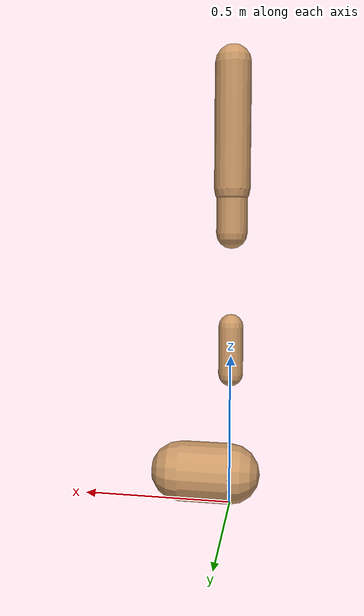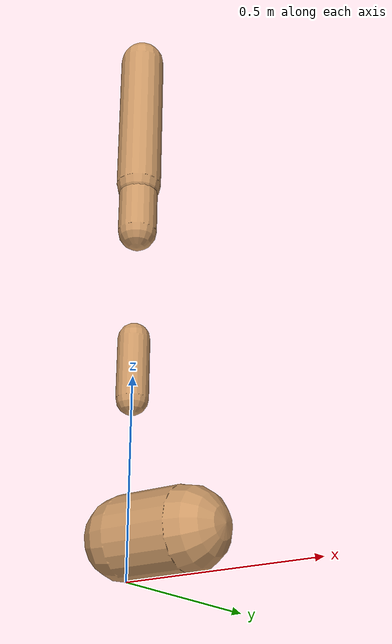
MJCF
<mujoco model="walker2d">
  <compiler angle="degree" coordinate="global" inertiafromgeom="true" />
  <default>
    <joint armature="0.01" damping=".1" limited="true" />
    <geom conaffinity="0" condim="3" contype="1" density="1000" friction="0.8 .1 .1" rgba="0.8 0.6 .4 1" />
  </default>
  <option integrator="RK4" timestep="0.002" />
  <worldbody>

    <body name="torso" pos="0 0 -0.6479437798334989">
      <joint armature="0" axis="1 0 0" damping="0" limited="false" name="ignorex" pos="0 0 0" stiffness="0" type="slide" />
      <joint armature="0" axis="0 0 1" damping="0" limited="false" name="ignorez" pos="0 0 0" ref="1.25" stiffness="0" type="slide" />
      <joint armature="0" axis="0 1 0" damping="0" limited="false" name="ignorey" pos="0 0 0" stiffness="0" type="hinge" />
      <geom fromto="0 0 1.45 0 0 1.05" name="torso_geom" size="0.058549956898069404" type="capsule" />
      <body name="thigh">
        <joint axis="0 -1 0" name="thigh_joint" pos="0 0 1.05" range="-150 0" type="hinge" />
        <geom fromto="0.0 0.0 1.05 0.0 0.0 0.9069207378158679" name="thigh_geom" size="0.05059649093113749" type="capsule" />
        <body name="leg" pos="0.0 0.0 0.30692073781586793">
          <joint axis="0 -1 0" name="leg_joint" pos="0 0 0.6" range="-150 0" type="hinge" />
          <geom fromto="0.0 0.0 0.6 0.0 0.0 0.441023042017631" name="leg_geom" size="0.04047719274490999" type="capsule" />
          <body name="foot" pos="0.0 0.0 0.341023042017631">
            <joint axis="0 -1 0" name="foot_joint" pos="0 0 0.1" range="-45 45" type="hinge" />
            <geom fromto="0.0 0.0 0.1 0.1669119979076017 0.0 0.1" name="foot_geom" size="0.10050970078016426" type="capsule" />
          </body>
        </body>
      </body>

      <body name="thigh_left">
        <joint axis="0 -1 0" name="thigh_left_joint" pos="0 0 1.05" range="-150 0" type="hinge" />
        <geom fromto="0.0 0.0 1.05 0.0 0.0 0.9069207378158679" name="thigh_left_geom" rgba=".7 .3 .6 1" size="0.05059649093113749" type="capsule" />
        <body name="leg_left" pos="0.0 0.0 0.30692073781586793">
          <joint axis="0 -1 0" name="leg_left_joint" pos="0 0 0.6" range="-150 0" type="hinge" />
          <geom fromto="0.0 0.0 0.6 0.0 0.0 0.441023042017631" name="leg_left_geom" rgba=".7 .3 .6 1" size="0.04047719274490999" type="capsule" />
          <body name="foot_left" pos="0.0 0.0 0.341023042017631">
            <joint axis="0 -1 0" name="foot_left_joint" pos="0 0 0.1" range="-45 45" type="hinge" />
            <geom fromto="0.0 0.0 0.1 0.1669119979076017 0.0 0.1" name="foot_left_geom" rgba=".7 .3 .6 1" size="0.10050970078016426" type="capsule" />
          </body>
        </body>
      </body>
    </body>
  </worldbody>
  <actuator>

    <motor ctrllimited="true" ctrlrange="-1.0 1.0" gear="100" joint="thigh_joint" />
    <motor ctrllimited="true" ctrlrange="-1.0 1.0" gear="100" joint="leg_joint" />
    <motor ctrllimited="true" ctrlrange="-1.0 1.0" gear="100" joint="foot_joint" />
    <motor ctrllimited="true" ctrlrange="-1.0 1.0" gear="100" joint="thigh_left_joint" />
    <motor ctrllimited="true" ctrlrange="-1.0 1.0" gear="100" joint="leg_left_joint" />
    <motor ctrllimited="true" ctrlrange="-1.0 1.0" gear="100" joint="foot_left_joint" />

  </actuator>
</mujoco>
